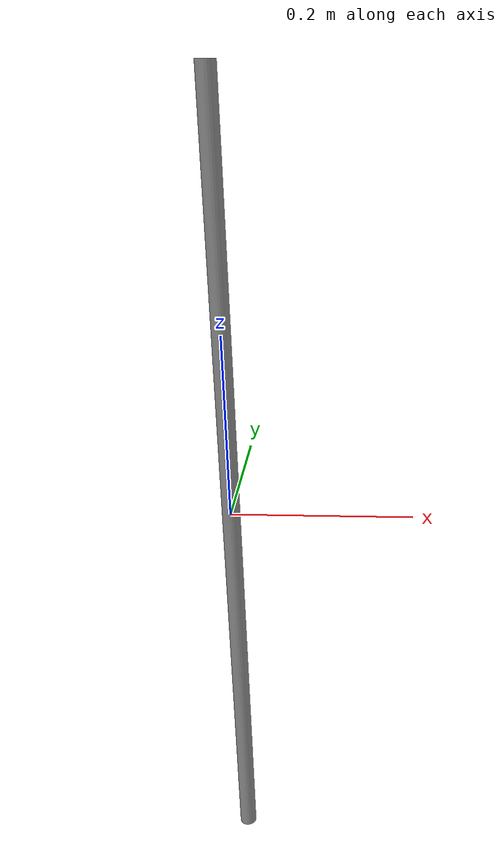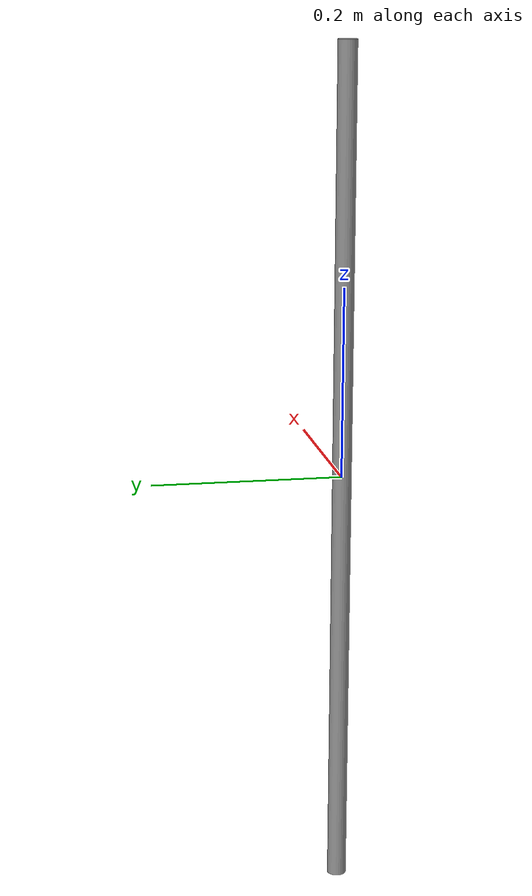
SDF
<?xml version="1.0"?>
<sdf version="1.6">
  <model name="column">
    <static>true</static>
    <link name="link">
      <collision name="collision">
        <geometry>
          <cylinder>
            <radius>0.01</radius>
            <length>0.9</length>
          </cylinder>
        </geometry>
      </collision>
      <visual name="visual">
        <geometry>
          <cylinder>
            <radius>0.01</radius>
            <length>0.9</length>
          </cylinder>
        </geometry>
        <material>
          <script>
            <uri>file://media/materials/scripts/gazebo.material</uri>
            <name>Gazebo/Grey</name>
          </script>
        </material>
      </visual>
    </link>
  </model>
</sdf>
